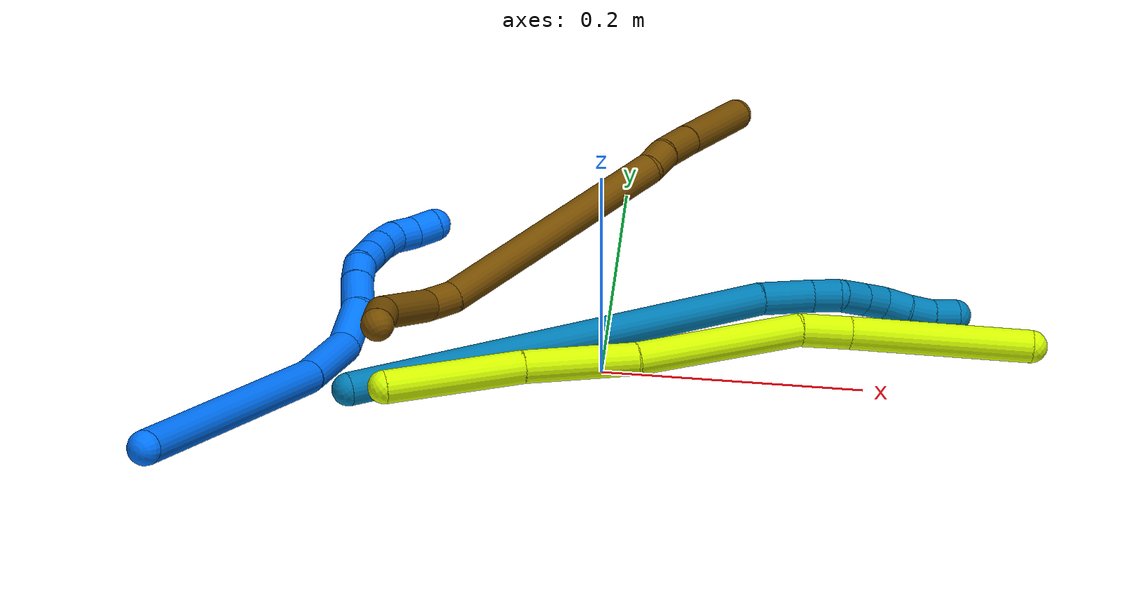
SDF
<sdf version="1.7">
 <world name="default">
  <model name="9">
   <static>0</static>
   <link name="9">
    <collision name="collision-cylinder-e_1_1_4">
     <pose>0.124955 0.059549 -0.092405 -2.56914 0.849274 -1.98756</pose>
     <geometry><cylinder><radius>0.0125</radius><length>0.332857</length></cylinder></geometry>
     <surface>
      <friction><ode><mu>1.16</mu><mu2>1.16</mu2><slip1>0</slip1><slip2>0</slip2></ode></friction>
      <contact><ode><kp>1e+06</kp><kd>1</kd><max_vel>0</max_vel><min_depth>0.001</min_depth></ode></contact>
     </surface>
    </collision>
    <visual name="visual-cylinder-e_1_1_4">
     <pose>0.124955 0.059549 -0.092405 -2.56914 0.849274 -1.98756</pose>
     <geometry><cylinder><radius>0.0125</radius><length>0.332857</length></cylinder></geometry>
     <material><ambient>0 0.490196 0.709804 1</ambient></material>
    </visual>
    <collision name="collision-cylinder-e_2_4_5">
     <pose>0.265092 0.123998 -0.198081 -2.78791 0.820723 -2.36209</pose>
     <geometry><cylinder><radius>0.0125</radius><length>0.041503</length></cylinder></geometry>
     <surface>
      <friction><ode><mu>1.16</mu><mu2>1.16</mu2><slip1>0</slip1><slip2>0</slip2></ode></friction>
      <contact><ode><kp>1e+06</kp><kd>1</kd><max_vel>0</max_vel><min_depth>0.001</min_depth></ode></contact>
     </surface>
    </collision>
    <visual name="visual-cylinder-e_2_4_5">
     <pose>0.265092 0.123998 -0.198081 -2.78791 0.820723 -2.36209</pose>
     <geometry><cylinder><radius>0.0125</radius><length>0.041503</length></cylinder></geometry>
     <material><ambient>0 0.490196 0.709804 1</ambient></material>
    </visual>
    <collision name="collision-cylinder-e_3_5_6">
     <pose>0.28964 0.12983 -0.21744 -2.98956 0.989001 -2.86094</pose>
     <geometry><cylinder><radius>0.0125</radius><length>0.02242</length></cylinder></geometry>
     <surface>
      <friction><ode><mu>1.16</mu><mu2>1.16</mu2><slip1>0</slip1><slip2>0</slip2></ode></friction>
      <contact><ode><kp>1e+06</kp><kd>1</kd><max_vel>0</max_vel><min_depth>0.001</min_depth></ode></contact>
     </surface>
    </collision>
    <visual name="visual-cylinder-e_3_5_6">
     <pose>0.28964 0.12983 -0.21744 -2.98956 0.989001 -2.86094</pose>
     <geometry><cylinder><radius>0.0125</radius><length>0.02242</length></cylinder></geometry>
     <material><ambient>0 0.490196 0.709804 1</ambient></material>
    </visual>
    <collision name="collision-cylinder-e_4_6_7">
     <pose>0.30396 0.133483 -0.23262 -2.85082 0.481206 -2.06552</pose>
     <geometry><cylinder><radius>0.0125</radius><length>0.02141</length></cylinder></geometry>
     <surface>
      <friction><ode><mu>1.16</mu><mu2>1.16</mu2><slip1>0</slip1><slip2>0</slip2></ode></friction>
      <contact><ode><kp>1e+06</kp><kd>1</kd><max_vel>0</max_vel><min_depth>0.001</min_depth></ode></contact>
     </surface>
    </collision>
    <visual name="visual-cylinder-e_4_6_7">
     <pose>0.30396 0.133483 -0.23262 -2.85082 0.481206 -2.06552</pose>
     <geometry><cylinder><radius>0.0125</radius><length>0.02141</length></cylinder></geometry>
     <material><ambient>0 0.490196 0.709804 1</ambient></material>
    </visual>
    <collision name="collision-cylinder-e_5_7_8">
     <pose>0.313711 0.138699 -0.250462 -2.86385 0.485031 -2.11304</pose>
     <geometry><cylinder><radius>0.0125</radius><length>0.020574</length></cylinder></geometry>
     <surface>
      <friction><ode><mu>1.16</mu><mu2>1.16</mu2><slip1>0</slip1><slip2>0</slip2></ode></friction>
      <contact><ode><kp>1e+06</kp><kd>1</kd><max_vel>0</max_vel><min_depth>0.001</min_depth></ode></contact>
     </surface>
    </collision>
    <visual name="visual-cylinder-e_5_7_8">
     <pose>0.313711 0.138699 -0.250462 -2.86385 0.485031 -2.11304</pose>
     <geometry><cylinder><radius>0.0125</radius><length>0.020574</length></cylinder></geometry>
     <material><ambient>0 0.490196 0.709804 1</ambient></material>
    </visual>
    <collision name="collision-cylinder-e_6_8_9">
     <pose>0.325301 0.140191 -0.26684 3.01081 0.723505 2.79888</pose>
     <geometry><cylinder><radius>0.0125</radius><length>0.020524</length></cylinder></geometry>
     <surface>
      <friction><ode><mu>1.16</mu><mu2>1.16</mu2><slip1>0</slip1><slip2>0</slip2></ode></friction>
      <contact><ode><kp>1e+06</kp><kd>1</kd><max_vel>0</max_vel><min_depth>0.001</min_depth></ode></contact>
     </surface>
    </collision>
    <visual name="visual-cylinder-e_6_8_9">
     <pose>0.325301 0.140191 -0.26684 3.01081 0.723505 2.79888</pose>
     <geometry><cylinder><radius>0.0125</radius><length>0.020524</length></cylinder></geometry>
     <material><ambient>0 0.490196 0.709804 1</ambient></material>
    </visual>
    <collision name="collision-cylinder-e_7_9_10">
     <pose>0.33859 0.139738 -0.282468 -3.07295 0.680621 -2.94826</pose>
     <geometry><cylinder><radius>0.0125</radius><length>0.020644</length></cylinder></geometry>
     <surface>
      <friction><ode><mu>1.16</mu><mu2>1.16</mu2><slip1>0</slip1><slip2>0</slip2></ode></friction>
      <contact><ode><kp>1e+06</kp><kd>1</kd><max_vel>0</max_vel><min_depth>0.001</min_depth></ode></contact>
     </surface>
    </collision>
    <visual name="visual-cylinder-e_7_9_10">
     <pose>0.33859 0.139738 -0.282468 -3.07295 0.680621 -2.94826</pose>
     <geometry><cylinder><radius>0.0125</radius><length>0.020644</length></cylinder></geometry>
     <material><ambient>0 0.490196 0.709804 1</ambient></material>
    </visual>
    <collision name="collision-cylinder-e_8_10_2">
     <pose>0.352263 0.142298 -0.297189 -2.8509 0.79712 -2.4725</pose>
     <geometry><cylinder><radius>0.0125</radius><length>0.020069</length></cylinder></geometry>
     <surface>
      <friction><ode><mu>1.16</mu><mu2>1.16</mu2><slip1>0</slip1><slip2>0</slip2></ode></friction>
      <contact><ode><kp>1e+06</kp><kd>1</kd><max_vel>0</max_vel><min_depth>0.001</min_depth></ode></contact>
     </surface>
    </collision>
    <visual name="visual-cylinder-e_8_10_2">
     <pose>0.352263 0.142298 -0.297189 -2.8509 0.79712 -2.4725</pose>
     <geometry><cylinder><radius>0.0125</radius><length>0.020069</length></cylinder></geometry>
     <material><ambient>0 0.490196 0.709804 1</ambient></material>
    </visual>
    <collision name="collision-sphere-2">
     <pose>0.359442 0.144308 -0.303907 0 -0 0</pose>
     <geometry><sphere><radius>0.0125</radius></sphere></geometry>
     <surface>
      <friction><ode><mu>1.16</mu><mu2>1.16</mu2><slip1>0</slip1><slip2>0</slip2></ode></friction>
      <contact><ode><kp>1e+06</kp><kd>1</kd><max_vel>0</max_vel><min_depth>0.001</min_depth></ode></contact>
     </surface>
    </collision>
    <visual name="visual-sphere-2">
     <pose>0.359442 0.144308 -0.303907 0 -0 0</pose>
     <geometry><sphere><radius>0.0125</radius></sphere></geometry>
     <material><ambient>0 0.490196 0.709804 1</ambient></material>
    </visual>
    <collision name="collision-sphere-10">
     <pose>0.345085 0.140289 -0.290471 0 -0 0</pose>
     <geometry><sphere><radius>0.0125</radius></sphere></geometry>
     <surface>
      <friction><ode><mu>1.16</mu><mu2>1.16</mu2><slip1>0</slip1><slip2>0</slip2></ode></friction>
      <contact><ode><kp>1e+06</kp><kd>1</kd><max_vel>0</max_vel><min_depth>0.001</min_depth></ode></contact>
     </surface>
    </collision>
    <visual name="visual-sphere-10">
     <pose>0.345085 0.140289 -0.290471 0 -0 0</pose>
     <geometry><sphere><radius>0.0125</radius></sphere></geometry>
     <material><ambient>0 0.490196 0.709804 1</ambient></material>
    </visual>
    <collision name="collision-sphere-9">
     <pose>0.332095 0.139188 -0.274465 0 -0 0</pose>
     <geometry><sphere><radius>0.0125</radius></sphere></geometry>
     <surface>
      <friction><ode><mu>1.16</mu><mu2>1.16</mu2><slip1>0</slip1><slip2>0</slip2></ode></friction>
      <contact><ode><kp>1e+06</kp><kd>1</kd><max_vel>0</max_vel><min_depth>0.001</min_depth></ode></contact>
     </surface>
    </collision>
    <visual name="visual-sphere-9">
     <pose>0.332095 0.139188 -0.274465 0 -0 0</pose>
     <geometry><sphere><radius>0.0125</radius></sphere></geometry>
     <material><ambient>0 0.490196 0.709804 1</ambient></material>
    </visual>
    <collision name="collision-sphere-4">
     <pose>0.24991 0.119098 -0.18481 0 -0 0</pose>
     <geometry><sphere><radius>0.0125</radius></sphere></geometry>
     <surface>
      <friction><ode><mu>1.16</mu><mu2>1.16</mu2><slip1>0</slip1><slip2>0</slip2></ode></friction>
      <contact><ode><kp>1e+06</kp><kd>1</kd><max_vel>0</max_vel><min_depth>0.001</min_depth></ode></contact>
     </surface>
    </collision>
    <visual name="visual-sphere-4">
     <pose>0.24991 0.119098 -0.18481 0 -0 0</pose>
     <geometry><sphere><radius>0.0125</radius></sphere></geometry>
     <material><ambient>0 0.490196 0.709804 1</ambient></material>
    </visual>
    <collision name="collision-sphere-1">
     <geometry><sphere><radius>0.0125</radius></sphere></geometry>
     <surface>
      <friction><ode><mu>1.16</mu><mu2>1.16</mu2><slip1>0</slip1><slip2>0</slip2></ode></friction>
      <contact><ode><kp>1e+06</kp><kd>1</kd><max_vel>0</max_vel><min_depth>0.001</min_depth></ode></contact>
     </surface>
    </collision>
    <visual name="visual-sphere-1">
     <geometry><sphere><radius>0.0125</radius></sphere></geometry>
     <material><ambient>0 0.490196 0.709804 1</ambient></material>
    </visual>
    <collision name="collision-sphere-8">
     <pose>0.318507 0.141194 -0.259214 0 -0 0</pose>
     <geometry><sphere><radius>0.0125</radius></sphere></geometry>
     <surface>
      <friction><ode><mu>1.16</mu><mu2>1.16</mu2><slip1>0</slip1><slip2>0</slip2></ode></friction>
      <contact><ode><kp>1e+06</kp><kd>1</kd><max_vel>0</max_vel><min_depth>0.001</min_depth></ode></contact>
     </surface>
    </collision>
    <visual name="visual-sphere-8">
     <pose>0.318507 0.141194 -0.259214 0 -0 0</pose>
     <geometry><sphere><radius>0.0125</radius></sphere></geometry>
     <material><ambient>0 0.490196 0.709804 1</ambient></material>
    </visual>
    <collision name="collision-sphere-5">
     <pose>0.280275 0.128897 -0.211351 0 -0 0</pose>
     <geometry><sphere><radius>0.0125</radius></sphere></geometry>
     <surface>
      <friction><ode><mu>1.16</mu><mu2>1.16</mu2><slip1>0</slip1><slip2>0</slip2></ode></friction>
      <contact><ode><kp>1e+06</kp><kd>1</kd><max_vel>0</max_vel><min_depth>0.001</min_depth></ode></contact>
     </surface>
    </collision>
    <visual name="visual-sphere-5">
     <pose>0.280275 0.128897 -0.211351 0 -0 0</pose>
     <geometry><sphere><radius>0.0125</radius></sphere></geometry>
     <material><ambient>0 0.490196 0.709804 1</ambient></material>
    </visual>
    <collision name="collision-sphere-6">
     <pose>0.299006 0.130763 -0.223529 0 -0 0</pose>
     <geometry><sphere><radius>0.0125</radius></sphere></geometry>
     <surface>
      <friction><ode><mu>1.16</mu><mu2>1.16</mu2><slip1>0</slip1><slip2>0</slip2></ode></friction>
      <contact><ode><kp>1e+06</kp><kd>1</kd><max_vel>0</max_vel><min_depth>0.001</min_depth></ode></contact>
     </surface>
    </collision>
    <visual name="visual-sphere-6">
     <pose>0.299006 0.130763 -0.223529 0 -0 0</pose>
     <geometry><sphere><radius>0.0125</radius></sphere></geometry>
     <material><ambient>0 0.490196 0.709804 1</ambient></material>
    </visual>
    <collision name="collision-sphere-7">
     <pose>0.308915 0.136204 -0.241711 0 -0 0</pose>
     <geometry><sphere><radius>0.0125</radius></sphere></geometry>
     <surface>
      <friction><ode><mu>1.16</mu><mu2>1.16</mu2><slip1>0</slip1><slip2>0</slip2></ode></friction>
      <contact><ode><kp>1e+06</kp><kd>1</kd><max_vel>0</max_vel><min_depth>0.001</min_depth></ode></contact>
     </surface>
    </collision>
    <visual name="visual-sphere-7">
     <pose>0.308915 0.136204 -0.241711 0 -0 0</pose>
     <geometry><sphere><radius>0.0125</radius></sphere></geometry>
     <material><ambient>0 0.490196 0.709804 1</ambient></material>
    </visual>
    <inertial>
     <pose>0.185571 0.084415 -0.142518 0 -0 0</pose>
     <mass>0.5</mass>
     <inertia>
      <ixx>-0.002677</ixx>
      <ixy>0</ixy>
      <ixz>0</ixz>
      <iyy>0.000353</iyy>
      <iyz>0</iyz>
      <izz>-0.00346</izz>
     </inertia>
    </inertial>
   </link>
   <pose>-0.173712 -0.132947 0.095427 0.155484 -0.48087 0.036841</pose>
  </model>
  <model name="12">
   <static>0</static>
   <link name="12">
    <collision name="collision-cylinder-e_1_1_4">
     <pose>0.014368 0.006511 -0.012511 -2.66175 0.794689 -2.08607</pose>
     <geometry><cylinder><radius>0.0125</radius><length>0.040267</length></cylinder></geometry>
     <surface>
      <friction><ode><mu>1.16</mu><mu2>1.16</mu2><slip1>0</slip1><slip2>0</slip2></ode></friction>
      <contact><ode><kp>1e+06</kp><kd>1</kd><max_vel>0</max_vel><min_depth>0.001</min_depth></ode></contact>
     </surface>
    </collision>
    <visual name="visual-cylinder-e_1_1_4">
     <pose>0.014368 0.006511 -0.012511 -2.66175 0.794689 -2.08607</pose>
     <geometry><cylinder><radius>0.0125</radius><length>0.040267</length></cylinder></geometry>
     <material><ambient>0.466667 0.301961 0 1</ambient></material>
    </visual>
    <collision name="collision-cylinder-e_2_4_5">
     <pose>0.058419 0.035991 -0.039275 -2.12615 0.832097 -1.34233</pose>
     <geometry><cylinder><radius>0.0125</radius><length>0.080294</length></cylinder></geometry>
     <surface>
      <friction><ode><mu>1.16</mu><mu2>1.16</mu2><slip1>0</slip1><slip2>0</slip2></ode></friction>
      <contact><ode><kp>1e+06</kp><kd>1</kd><max_vel>0</max_vel><min_depth>0.001</min_depth></ode></contact>
     </surface>
    </collision>
    <visual name="visual-cylinder-e_2_4_5">
     <pose>0.058419 0.035991 -0.039275 -2.12615 0.832097 -1.34233</pose>
     <geometry><cylinder><radius>0.0125</radius><length>0.080294</length></cylinder></geometry>
     <material><ambient>0.466667 0.301961 0 1</ambient></material>
    </visual>
    <collision name="collision-cylinder-e_3_5_6">
     <pose>0.093017 0.070997 -0.056384 -1.80385 0.378218 -0.475145</pose>
     <geometry><cylinder><radius>0.0125</radius><length>0.026625</length></cylinder></geometry>
     <surface>
      <friction><ode><mu>1.16</mu><mu2>1.16</mu2><slip1>0</slip1><slip2>0</slip2></ode></friction>
      <contact><ode><kp>1e+06</kp><kd>1</kd><max_vel>0</max_vel><min_depth>0.001</min_depth></ode></contact>
     </surface>
    </collision>
    <visual name="visual-cylinder-e_3_5_6">
     <pose>0.093017 0.070997 -0.056384 -1.80385 0.378218 -0.475145</pose>
     <geometry><cylinder><radius>0.0125</radius><length>0.026625</length></cylinder></geometry>
     <material><ambient>0.466667 0.301961 0 1</ambient></material>
    </visual>
    <collision name="collision-cylinder-e_4_6_7">
     <pose>0.11173 0.179695 -0.095785 -1.93225 0.132727 -0.191767</pose>
     <geometry><cylinder><radius>0.0125</radius><length>0.20851</length></cylinder></geometry>
     <surface>
      <friction><ode><mu>1.16</mu><mu2>1.16</mu2><slip1>0</slip1><slip2>0</slip2></ode></friction>
      <contact><ode><kp>1e+06</kp><kd>1</kd><max_vel>0</max_vel><min_depth>0.001</min_depth></ode></contact>
     </surface>
    </collision>
    <visual name="visual-cylinder-e_4_6_7">
     <pose>0.11173 0.179695 -0.095785 -1.93225 0.132727 -0.191767</pose>
     <geometry><cylinder><radius>0.0125</radius><length>0.20851</length></cylinder></geometry>
     <material><ambient>0.466667 0.301961 0 1</ambient></material>
    </visual>
    <collision name="collision-cylinder-e_5_7_8">
     <pose>0.129083 0.2854 -0.138886 -2.19816 0.308211 -0.591175</pose>
     <geometry><cylinder><radius>0.0125</radius><length>0.023447</length></cylinder></geometry>
     <surface>
      <friction><ode><mu>1.16</mu><mu2>1.16</mu2><slip1>0</slip1><slip2>0</slip2></ode></friction>
      <contact><ode><kp>1e+06</kp><kd>1</kd><max_vel>0</max_vel><min_depth>0.001</min_depth></ode></contact>
     </surface>
    </collision>
    <visual name="visual-cylinder-e_5_7_8">
     <pose>0.129083 0.2854 -0.138886 -2.19816 0.308211 -0.591175</pose>
     <geometry><cylinder><radius>0.0125</radius><length>0.023447</length></cylinder></geometry>
     <material><ambient>0.466667 0.301961 0 1</ambient></material>
    </visual>
    <collision name="collision-cylinder-e_6_8_9">
     <pose>0.141403 0.30762 -0.153232 -2.1046 0.520009 -0.872569</pose>
     <geometry><cylinder><radius>0.0125</radius><length>0.035276</length></cylinder></geometry>
     <surface>
      <friction><ode><mu>1.16</mu><mu2>1.16</mu2><slip1>0</slip1><slip2>0</slip2></ode></friction>
      <contact><ode><kp>1e+06</kp><kd>1</kd><max_vel>0</max_vel><min_depth>0.001</min_depth></ode></contact>
     </surface>
    </collision>
    <visual name="visual-cylinder-e_6_8_9">
     <pose>0.141403 0.30762 -0.153232 -2.1046 0.520009 -0.872569</pose>
     <geometry><cylinder><radius>0.0125</radius><length>0.035276</length></cylinder></geometry>
     <material><ambient>0.466667 0.301961 0 1</ambient></material>
    </visual>
    <collision name="collision-cylinder-e_7_9_2">
     <pose>0.173232 0.3517 -0.17957 -2.11144 0.569263 -0.954121</pose>
     <geometry><cylinder><radius>0.0125</radius><length>0.085582</length></cylinder></geometry>
     <surface>
      <friction><ode><mu>1.16</mu><mu2>1.16</mu2><slip1>0</slip1><slip2>0</slip2></ode></friction>
      <contact><ode><kp>1e+06</kp><kd>1</kd><max_vel>0</max_vel><min_depth>0.001</min_depth></ode></contact>
     </surface>
    </collision>
    <visual name="visual-cylinder-e_7_9_2">
     <pose>0.173232 0.3517 -0.17957 -2.11144 0.569263 -0.954121</pose>
     <geometry><cylinder><radius>0.0125</radius><length>0.085582</length></cylinder></geometry>
     <material><ambient>0.466667 0.301961 0 1</ambient></material>
    </visual>
    <collision name="collision-sphere-2">
     <pose>0.196297 0.382602 -0.198121 0 -0 0</pose>
     <geometry><sphere><radius>0.0125</radius></sphere></geometry>
     <surface>
      <friction><ode><mu>1.16</mu><mu2>1.16</mu2><slip1>0</slip1><slip2>0</slip2></ode></friction>
      <contact><ode><kp>1e+06</kp><kd>1</kd><max_vel>0</max_vel><min_depth>0.001</min_depth></ode></contact>
     </surface>
    </collision>
    <visual name="visual-sphere-2">
     <pose>0.196297 0.382602 -0.198121 0 -0 0</pose>
     <geometry><sphere><radius>0.0125</radius></sphere></geometry>
     <material><ambient>0.466667 0.301961 0 1</ambient></material>
    </visual>
    <collision name="collision-sphere-9">
     <pose>0.150167 0.320797 -0.16102 0 -0 0</pose>
     <geometry><sphere><radius>0.0125</radius></sphere></geometry>
     <surface>
      <friction><ode><mu>1.16</mu><mu2>1.16</mu2><slip1>0</slip1><slip2>0</slip2></ode></friction>
      <contact><ode><kp>1e+06</kp><kd>1</kd><max_vel>0</max_vel><min_depth>0.001</min_depth></ode></contact>
     </surface>
    </collision>
    <visual name="visual-sphere-9">
     <pose>0.150167 0.320797 -0.16102 0 -0 0</pose>
     <geometry><sphere><radius>0.0125</radius></sphere></geometry>
     <material><ambient>0.466667 0.301961 0 1</ambient></material>
    </visual>
    <collision name="collision-sphere-4">
     <pose>0.028737 0.013022 -0.025022 0 -0 0</pose>
     <geometry><sphere><radius>0.0125</radius></sphere></geometry>
     <surface>
      <friction><ode><mu>1.16</mu><mu2>1.16</mu2><slip1>0</slip1><slip2>0</slip2></ode></friction>
      <contact><ode><kp>1e+06</kp><kd>1</kd><max_vel>0</max_vel><min_depth>0.001</min_depth></ode></contact>
     </surface>
    </collision>
    <visual name="visual-sphere-4">
     <pose>0.028737 0.013022 -0.025022 0 -0 0</pose>
     <geometry><sphere><radius>0.0125</radius></sphere></geometry>
     <material><ambient>0.466667 0.301961 0 1</ambient></material>
    </visual>
    <collision name="collision-sphere-1">
     <geometry><sphere><radius>0.0125</radius></sphere></geometry>
     <surface>
      <friction><ode><mu>1.16</mu><mu2>1.16</mu2><slip1>0</slip1><slip2>0</slip2></ode></friction>
      <contact><ode><kp>1e+06</kp><kd>1</kd><max_vel>0</max_vel><min_depth>0.001</min_depth></ode></contact>
     </surface>
    </collision>
    <visual name="visual-sphere-1">
     <geometry><sphere><radius>0.0125</radius></sphere></geometry>
     <material><ambient>0.466667 0.301961 0 1</ambient></material>
    </visual>
    <collision name="collision-sphere-8">
     <pose>0.132639 0.294444 -0.145444 0 -0 0</pose>
     <geometry><sphere><radius>0.0125</radius></sphere></geometry>
     <surface>
      <friction><ode><mu>1.16</mu><mu2>1.16</mu2><slip1>0</slip1><slip2>0</slip2></ode></friction>
      <contact><ode><kp>1e+06</kp><kd>1</kd><max_vel>0</max_vel><min_depth>0.001</min_depth></ode></contact>
     </surface>
    </collision>
    <visual name="visual-sphere-8">
     <pose>0.132639 0.294444 -0.145444 0 -0 0</pose>
     <geometry><sphere><radius>0.0125</radius></sphere></geometry>
     <material><ambient>0.466667 0.301961 0 1</ambient></material>
    </visual>
    <collision name="collision-sphere-5">
     <pose>0.088102 0.05896 -0.053527 0 -0 0</pose>
     <geometry><sphere><radius>0.0125</radius></sphere></geometry>
     <surface>
      <friction><ode><mu>1.16</mu><mu2>1.16</mu2><slip1>0</slip1><slip2>0</slip2></ode></friction>
      <contact><ode><kp>1e+06</kp><kd>1</kd><max_vel>0</max_vel><min_depth>0.001</min_depth></ode></contact>
     </surface>
    </collision>
    <visual name="visual-sphere-5">
     <pose>0.088102 0.05896 -0.053527 0 -0 0</pose>
     <geometry><sphere><radius>0.0125</radius></sphere></geometry>
     <material><ambient>0.466667 0.301961 0 1</ambient></material>
    </visual>
    <collision name="collision-sphere-6">
     <pose>0.097933 0.083034 -0.059242 0 -0 0</pose>
     <geometry><sphere><radius>0.0125</radius></sphere></geometry>
     <surface>
      <friction><ode><mu>1.16</mu><mu2>1.16</mu2><slip1>0</slip1><slip2>0</slip2></ode></friction>
      <contact><ode><kp>1e+06</kp><kd>1</kd><max_vel>0</max_vel><min_depth>0.001</min_depth></ode></contact>
     </surface>
    </collision>
    <visual name="visual-sphere-6">
     <pose>0.097933 0.083034 -0.059242 0 -0 0</pose>
     <geometry><sphere><radius>0.0125</radius></sphere></geometry>
     <material><ambient>0.466667 0.301961 0 1</ambient></material>
    </visual>
    <collision name="collision-sphere-7">
     <pose>0.125527 0.276356 -0.132329 0 -0 0</pose>
     <geometry><sphere><radius>0.0125</radius></sphere></geometry>
     <surface>
      <friction><ode><mu>1.16</mu><mu2>1.16</mu2><slip1>0</slip1><slip2>0</slip2></ode></friction>
      <contact><ode><kp>1e+06</kp><kd>1</kd><max_vel>0</max_vel><min_depth>0.001</min_depth></ode></contact>
     </surface>
    </collision>
    <visual name="visual-sphere-7">
     <pose>0.125527 0.276356 -0.132329 0 -0 0</pose>
     <geometry><sphere><radius>0.0125</radius></sphere></geometry>
     <material><ambient>0.466667 0.301961 0 1</ambient></material>
    </visual>
    <inertial>
     <pose>0.107766 0.180306 -0.098321 0 -0 0</pose>
     <mass>0.5</mass>
     <inertia>
      <ixx>0.000574</ixx>
      <ixy>0</ixy>
      <ixz>0</ixz>
      <iyy>-0.000408</iyy>
      <iyz>0</iyz>
      <izz>-0.000974</izz>
     </inertia>
    </inertial>
   </link>
   <pose>-0.154733 -0.104962 0.1364 2.92858 1.31658 1.84607</pose>
  </model>
  <model name="14">
   <static>0</static>
   <link name="14">
    <collision name="collision-cylinder-e_1_1_4">
     <pose>-0.001948 0.001385 -0.118748 -3.12993 -0.016403 1.9051</pose>
     <geometry><cylinder><radius>0.0125</radius><length>0.237544</length></cylinder></geometry>
     <surface>
      <friction><ode><mu>1.16</mu><mu2>1.16</mu2><slip1>0</slip1><slip2>0</slip2></ode></friction>
      <contact><ode><kp>1e+06</kp><kd>1</kd><max_vel>0</max_vel><min_depth>0.001</min_depth></ode></contact>
     </surface>
    </collision>
    <visual name="visual-cylinder-e_1_1_4">
     <pose>-0.001948 0.001385 -0.118748 -3.12993 -0.016403 1.9051</pose>
     <geometry><cylinder><radius>0.0125</radius><length>0.237544</length></cylinder></geometry>
     <material><ambient>0 0.462745 1 1</ambient></material>
    </visual>
    <collision name="collision-cylinder-e_2_4_5">
     <pose>-0.00545 0.008038 -0.271407 -2.98751 -0.04525 0.57032</pose>
     <geometry><cylinder><radius>0.0125</radius><length>0.068707</length></cylinder></geometry>
     <surface>
      <friction><ode><mu>1.16</mu><mu2>1.16</mu2><slip1>0</slip1><slip2>0</slip2></ode></friction>
      <contact><ode><kp>1e+06</kp><kd>1</kd><max_vel>0</max_vel><min_depth>0.001</min_depth></ode></contact>
     </surface>
    </collision>
    <visual name="visual-cylinder-e_2_4_5">
     <pose>-0.00545 0.008038 -0.271407 -2.98751 -0.04525 0.57032</pose>
     <geometry><cylinder><radius>0.0125</radius><length>0.068707</length></cylinder></geometry>
     <material><ambient>0 0.462745 1 1</ambient></material>
    </visual>
    <collision name="collision-cylinder-e_3_5_6">
     <pose>-0.005347 0.024435 -0.321772 -2.54684 0.083208 -0.270013</pose>
     <geometry><cylinder><radius>0.0125</radius><length>0.039867</length></cylinder></geometry>
     <surface>
      <friction><ode><mu>1.16</mu><mu2>1.16</mu2><slip1>0</slip1><slip2>0</slip2></ode></friction>
      <contact><ode><kp>1e+06</kp><kd>1</kd><max_vel>0</max_vel><min_depth>0.001</min_depth></ode></contact>
     </surface>
    </collision>
    <visual name="visual-cylinder-e_3_5_6">
     <pose>-0.005347 0.024435 -0.321772 -2.54684 0.083208 -0.270013</pose>
     <geometry><cylinder><radius>0.0125</radius><length>0.039867</length></cylinder></geometry>
     <material><ambient>0 0.462745 1 1</ambient></material>
    </visual>
    <collision name="collision-cylinder-e_4_6_7">
     <pose>-0.006585 0.044983 -0.349605 -2.45024 -0.193461 0.52637</pose>
     <geometry><cylinder><radius>0.0125</radius><length>0.030104</length></cylinder></geometry>
     <surface>
      <friction><ode><mu>1.16</mu><mu2>1.16</mu2><slip1>0</slip1><slip2>0</slip2></ode></friction>
      <contact><ode><kp>1e+06</kp><kd>1</kd><max_vel>0</max_vel><min_depth>0.001</min_depth></ode></contact>
     </surface>
    </collision>
    <visual name="visual-cylinder-e_4_6_7">
     <pose>-0.006585 0.044983 -0.349605 -2.45024 -0.193461 0.52637</pose>
     <geometry><cylinder><radius>0.0125</radius><length>0.030104</length></cylinder></geometry>
     <material><ambient>0 0.462745 1 1</ambient></material>
    </visual>
    <collision name="collision-cylinder-e_5_7_8">
     <pose>-0.010786 0.060078 -0.369618 -2.55989 -0.12584 0.414894</pose>
     <geometry><cylinder><radius>0.0125</radius><length>0.02083</length></cylinder></geometry>
     <surface>
      <friction><ode><mu>1.16</mu><mu2>1.16</mu2><slip1>0</slip1><slip2>0</slip2></ode></friction>
      <contact><ode><kp>1e+06</kp><kd>1</kd><max_vel>0</max_vel><min_depth>0.001</min_depth></ode></contact>
     </surface>
    </collision>
    <visual name="visual-cylinder-e_5_7_8">
     <pose>-0.010786 0.060078 -0.369618 -2.55989 -0.12584 0.414894</pose>
     <geometry><cylinder><radius>0.0125</radius><length>0.02083</length></cylinder></geometry>
     <material><ambient>0 0.462745 1 1</ambient></material>
    </visual>
    <collision name="collision-cylinder-e_6_8_9">
     <pose>-0.012699 0.067863 -0.388512 -2.93896 -0.057763 0.553722</pose>
     <geometry><cylinder><radius>0.0125</radius><length>0.020984</length></cylinder></geometry>
     <surface>
      <friction><ode><mu>1.16</mu><mu2>1.16</mu2><slip1>0</slip1><slip2>0</slip2></ode></friction>
      <contact><ode><kp>1e+06</kp><kd>1</kd><max_vel>0</max_vel><min_depth>0.001</min_depth></ode></contact>
     </surface>
    </collision>
    <visual name="visual-cylinder-e_6_8_9">
     <pose>-0.012699 0.067863 -0.388512 -2.93896 -0.057763 0.553722</pose>
     <geometry><cylinder><radius>0.0125</radius><length>0.020984</length></cylinder></geometry>
     <material><ambient>0 0.462745 1 1</ambient></material>
    </visual>
    <collision name="collision-cylinder-e_7_9_10">
     <pose>-0.013705 0.072218 -0.40922 -2.92979 -0.037527 0.349478</pose>
     <geometry><cylinder><radius>0.0125</radius><length>0.021389</length></cylinder></geometry>
     <surface>
      <friction><ode><mu>1.16</mu><mu2>1.16</mu2><slip1>0</slip1><slip2>0</slip2></ode></friction>
      <contact><ode><kp>1e+06</kp><kd>1</kd><max_vel>0</max_vel><min_depth>0.001</min_depth></ode></contact>
     </surface>
    </collision>
    <visual name="visual-cylinder-e_7_9_10">
     <pose>-0.013705 0.072218 -0.40922 -2.92979 -0.037527 0.349478</pose>
     <geometry><cylinder><radius>0.0125</radius><length>0.021389</length></cylinder></geometry>
     <material><ambient>0 0.462745 1 1</ambient></material>
    </visual>
    <collision name="collision-cylinder-e_8_10_11">
     <pose>-0.013018 0.075744 -0.429599 -3.01352 0.108336 -1.40386</pose>
     <geometry><cylinder><radius>0.0125</radius><length>0.020145</length></cylinder></geometry>
     <surface>
      <friction><ode><mu>1.16</mu><mu2>1.16</mu2><slip1>0</slip1><slip2>0</slip2></ode></friction>
      <contact><ode><kp>1e+06</kp><kd>1</kd><max_vel>0</max_vel><min_depth>0.001</min_depth></ode></contact>
     </surface>
    </collision>
    <visual name="visual-cylinder-e_8_10_11">
     <pose>-0.013018 0.075744 -0.429599 -3.01352 0.108336 -1.40386</pose>
     <geometry><cylinder><radius>0.0125</radius><length>0.020145</length></cylinder></geometry>
     <material><ambient>0 0.462745 1 1</ambient></material>
    </visual>
    <collision name="collision-cylinder-e_9_11_12">
     <pose>-0.008628 0.076028 -0.44911 3.03817 0.330166 2.53915</pose>
     <geometry><cylinder><radius>0.0125</radius><length>0.02036</length></cylinder></geometry>
     <surface>
      <friction><ode><mu>1.16</mu><mu2>1.16</mu2><slip1>0</slip1><slip2>0</slip2></ode></friction>
      <contact><ode><kp>1e+06</kp><kd>1</kd><max_vel>0</max_vel><min_depth>0.001</min_depth></ode></contact>
     </surface>
    </collision>
    <visual name="visual-cylinder-e_9_11_12">
     <pose>-0.008628 0.076028 -0.44911 3.03817 0.330166 2.53915</pose>
     <geometry><cylinder><radius>0.0125</radius><length>0.02036</length></cylinder></geometry>
     <material><ambient>0 0.462745 1 1</ambient></material>
    </visual>
    <collision name="collision-cylinder-e_10_12_2">
     <pose>0.000397 0.07483 -0.466928 3.11686 0.607055 3.06266</pose>
     <geometry><cylinder><radius>0.0125</radius><length>0.020071</length></cylinder></geometry>
     <surface>
      <friction><ode><mu>1.16</mu><mu2>1.16</mu2><slip1>0</slip1><slip2>0</slip2></ode></friction>
      <contact><ode><kp>1e+06</kp><kd>1</kd><max_vel>0</max_vel><min_depth>0.001</min_depth></ode></contact>
     </surface>
    </collision>
    <visual name="visual-cylinder-e_10_12_2">
     <pose>0.000397 0.07483 -0.466928 3.11686 0.607055 3.06266</pose>
     <geometry><cylinder><radius>0.0125</radius><length>0.020071</length></cylinder></geometry>
     <material><ambient>0 0.462745 1 1</ambient></material>
    </visual>
    <collision name="collision-sphere-2">
     <pose>0.006121 0.074626 -0.475168 0 -0 0</pose>
     <geometry><sphere><radius>0.0125</radius></sphere></geometry>
     <surface>
      <friction><ode><mu>1.16</mu><mu2>1.16</mu2><slip1>0</slip1><slip2>0</slip2></ode></friction>
      <contact><ode><kp>1e+06</kp><kd>1</kd><max_vel>0</max_vel><min_depth>0.001</min_depth></ode></contact>
     </surface>
    </collision>
    <visual name="visual-sphere-2">
     <pose>0.006121 0.074626 -0.475168 0 -0 0</pose>
     <geometry><sphere><radius>0.0125</radius></sphere></geometry>
     <material><ambient>0 0.462745 1 1</ambient></material>
    </visual>
    <collision name="collision-sphere-12">
     <pose>-0.005328 0.075034 -0.458688 0 -0 0</pose>
     <geometry><sphere><radius>0.0125</radius></sphere></geometry>
     <surface>
      <friction><ode><mu>1.16</mu><mu2>1.16</mu2><slip1>0</slip1><slip2>0</slip2></ode></friction>
      <contact><ode><kp>1e+06</kp><kd>1</kd><max_vel>0</max_vel><min_depth>0.001</min_depth></ode></contact>
     </surface>
    </collision>
    <visual name="visual-sphere-12">
     <pose>-0.005328 0.075034 -0.458688 0 -0 0</pose>
     <geometry><sphere><radius>0.0125</radius></sphere></geometry>
     <material><ambient>0 0.462745 1 1</ambient></material>
    </visual>
    <collision name="collision-sphere-11">
     <pose>-0.011929 0.077022 -0.439531 0 -0 0</pose>
     <geometry><sphere><radius>0.0125</radius></sphere></geometry>
     <surface>
      <friction><ode><mu>1.16</mu><mu2>1.16</mu2><slip1>0</slip1><slip2>0</slip2></ode></friction>
      <contact><ode><kp>1e+06</kp><kd>1</kd><max_vel>0</max_vel><min_depth>0.001</min_depth></ode></contact>
     </surface>
    </collision>
    <visual name="visual-sphere-11">
     <pose>-0.011929 0.077022 -0.439531 0 -0 0</pose>
     <geometry><sphere><radius>0.0125</radius></sphere></geometry>
     <material><ambient>0 0.462745 1 1</ambient></material>
    </visual>
    <collision name="collision-sphere-10">
     <pose>-0.014107 0.074465 -0.419668 0 -0 0</pose>
     <geometry><sphere><radius>0.0125</radius></sphere></geometry>
     <surface>
      <friction><ode><mu>1.16</mu><mu2>1.16</mu2><slip1>0</slip1><slip2>0</slip2></ode></friction>
      <contact><ode><kp>1e+06</kp><kd>1</kd><max_vel>0</max_vel><min_depth>0.001</min_depth></ode></contact>
     </surface>
    </collision>
    <visual name="visual-sphere-10">
     <pose>-0.014107 0.074465 -0.419668 0 -0 0</pose>
     <geometry><sphere><radius>0.0125</radius></sphere></geometry>
     <material><ambient>0 0.462745 1 1</ambient></material>
    </visual>
    <collision name="collision-sphere-9">
     <pose>-0.013304 0.069971 -0.398772 0 -0 0</pose>
     <geometry><sphere><radius>0.0125</radius></sphere></geometry>
     <surface>
      <friction><ode><mu>1.16</mu><mu2>1.16</mu2><slip1>0</slip1><slip2>0</slip2></ode></friction>
      <contact><ode><kp>1e+06</kp><kd>1</kd><max_vel>0</max_vel><min_depth>0.001</min_depth></ode></contact>
     </surface>
    </collision>
    <visual name="visual-sphere-9">
     <pose>-0.013304 0.069971 -0.398772 0 -0 0</pose>
     <geometry><sphere><radius>0.0125</radius></sphere></geometry>
     <material><ambient>0 0.462745 1 1</ambient></material>
    </visual>
    <collision name="collision-sphere-4">
     <pose>-0.003896 0.002771 -0.237496 0 -0 0</pose>
     <geometry><sphere><radius>0.0125</radius></sphere></geometry>
     <surface>
      <friction><ode><mu>1.16</mu><mu2>1.16</mu2><slip1>0</slip1><slip2>0</slip2></ode></friction>
      <contact><ode><kp>1e+06</kp><kd>1</kd><max_vel>0</max_vel><min_depth>0.001</min_depth></ode></contact>
     </surface>
    </collision>
    <visual name="visual-sphere-4">
     <pose>-0.003896 0.002771 -0.237496 0 -0 0</pose>
     <geometry><sphere><radius>0.0125</radius></sphere></geometry>
     <material><ambient>0 0.462745 1 1</ambient></material>
    </visual>
    <collision name="collision-sphere-1">
     <geometry><sphere><radius>0.0125</radius></sphere></geometry>
     <surface>
      <friction><ode><mu>1.16</mu><mu2>1.16</mu2><slip1>0</slip1><slip2>0</slip2></ode></friction>
      <contact><ode><kp>1e+06</kp><kd>1</kd><max_vel>0</max_vel><min_depth>0.001</min_depth></ode></contact>
     </surface>
    </collision>
    <visual name="visual-sphere-1">
     <geometry><sphere><radius>0.0125</radius></sphere></geometry>
     <material><ambient>0 0.462745 1 1</ambient></material>
    </visual>
    <collision name="collision-sphere-8">
     <pose>-0.012093 0.065755 -0.378252 0 -0 0</pose>
     <geometry><sphere><radius>0.0125</radius></sphere></geometry>
     <surface>
      <friction><ode><mu>1.16</mu><mu2>1.16</mu2><slip1>0</slip1><slip2>0</slip2></ode></friction>
      <contact><ode><kp>1e+06</kp><kd>1</kd><max_vel>0</max_vel><min_depth>0.001</min_depth></ode></contact>
     </surface>
    </collision>
    <visual name="visual-sphere-8">
     <pose>-0.012093 0.065755 -0.378252 0 -0 0</pose>
     <geometry><sphere><radius>0.0125</radius></sphere></geometry>
     <material><ambient>0 0.462745 1 1</ambient></material>
    </visual>
    <collision name="collision-sphere-5">
     <pose>-0.007004 0.013305 -0.305319 0 -0 0</pose>
     <geometry><sphere><radius>0.0125</radius></sphere></geometry>
     <surface>
      <friction><ode><mu>1.16</mu><mu2>1.16</mu2><slip1>0</slip1><slip2>0</slip2></ode></friction>
      <contact><ode><kp>1e+06</kp><kd>1</kd><max_vel>0</max_vel><min_depth>0.001</min_depth></ode></contact>
     </surface>
    </collision>
    <visual name="visual-sphere-5">
     <pose>-0.007004 0.013305 -0.305319 0 -0 0</pose>
     <geometry><sphere><radius>0.0125</radius></sphere></geometry>
     <material><ambient>0 0.462745 1 1</ambient></material>
    </visual>
    <collision name="collision-sphere-6">
     <pose>-0.003691 0.035565 -0.338226 0 -0 0</pose>
     <geometry><sphere><radius>0.0125</radius></sphere></geometry>
     <surface>
      <friction><ode><mu>1.16</mu><mu2>1.16</mu2><slip1>0</slip1><slip2>0</slip2></ode></friction>
      <contact><ode><kp>1e+06</kp><kd>1</kd><max_vel>0</max_vel><min_depth>0.001</min_depth></ode></contact>
     </surface>
    </collision>
    <visual name="visual-sphere-6">
     <pose>-0.003691 0.035565 -0.338226 0 -0 0</pose>
     <geometry><sphere><radius>0.0125</radius></sphere></geometry>
     <material><ambient>0 0.462745 1 1</ambient></material>
    </visual>
    <collision name="collision-sphere-7">
     <pose>-0.009478 0.054401 -0.360985 0 -0 0</pose>
     <geometry><sphere><radius>0.0125</radius></sphere></geometry>
     <surface>
      <friction><ode><mu>1.16</mu><mu2>1.16</mu2><slip1>0</slip1><slip2>0</slip2></ode></friction>
      <contact><ode><kp>1e+06</kp><kd>1</kd><max_vel>0</max_vel><min_depth>0.001</min_depth></ode></contact>
     </surface>
    </collision>
    <visual name="visual-sphere-7">
     <pose>-0.009478 0.054401 -0.360985 0 -0 0</pose>
     <geometry><sphere><radius>0.0125</radius></sphere></geometry>
     <material><ambient>0 0.462745 1 1</ambient></material>
    </visual>
    <inertial>
     <pose>-0.004926 0.024011 -0.243964 0 -0 0</pose>
     <mass>0.5</mass>
     <inertia>
      <ixx>0.000749</ixx>
      <ixy>0</ixy>
      <ixz>0</ixz>
      <iyy>0.001423</iyy>
      <iyz>0</iyz>
      <izz>-4.4e-05</izz>
     </inertia>
    </inertial>
   </link>
   <pose>-0.277117 -0.350698 0.244591 0.960138 -0.577953 -0.045208</pose>
  </model>
  <model name="15">
   <static>0</static>
   <link name="15">
    <collision name="collision-cylinder-e_1_1_4">
     <pose>0.040559 0.012392 -0.030769 -2.75872 0.88527 -2.36532</pose>
     <geometry><cylinder><radius>0.0125</radius><length>0.104791</length></cylinder></geometry>
     <surface>
      <friction><ode><mu>1.16</mu><mu2>1.16</mu2><slip1>0</slip1><slip2>0</slip2></ode></friction>
      <contact><ode><kp>1e+06</kp><kd>1</kd><max_vel>0</max_vel><min_depth>0.001</min_depth></ode></contact>
     </surface>
    </collision>
    <visual name="visual-cylinder-e_1_1_4">
     <pose>0.040559 0.012392 -0.030769 -2.75872 0.88527 -2.36532</pose>
     <geometry><cylinder><radius>0.0125</radius><length>0.104791</length></cylinder></geometry>
     <material><ambient>0.835294 1 0 1</ambient></material>
    </visual>
    <collision name="collision-cylinder-e_2_4_5">
     <pose>0.113343 0.032577 -0.088842 -2.86358 0.848507 -2.54084</pose>
     <geometry><cylinder><radius>0.0125</radius><length>0.085901</length></cylinder></geometry>
     <surface>
      <friction><ode><mu>1.16</mu><mu2>1.16</mu2><slip1>0</slip1><slip2>0</slip2></ode></friction>
      <contact><ode><kp>1e+06</kp><kd>1</kd><max_vel>0</max_vel><min_depth>0.001</min_depth></ode></contact>
     </surface>
    </collision>
    <visual name="visual-cylinder-e_2_4_5">
     <pose>0.113343 0.032577 -0.088842 -2.86358 0.848507 -2.54084</pose>
     <geometry><cylinder><radius>0.0125</radius><length>0.085901</length></cylinder></geometry>
     <material><ambient>0.835294 1 0 1</ambient></material>
    </visual>
    <collision name="collision-cylinder-e_3_5_6">
     <pose>0.19419 0.060591 -0.153636 -2.64693 0.851375 -2.12535</pose>
     <geometry><cylinder><radius>0.0125</radius><length>0.129281</length></cylinder></geometry>
     <surface>
      <friction><ode><mu>1.16</mu><mu2>1.16</mu2><slip1>0</slip1><slip2>0</slip2></ode></friction>
      <contact><ode><kp>1e+06</kp><kd>1</kd><max_vel>0</max_vel><min_depth>0.001</min_depth></ode></contact>
     </surface>
    </collision>
    <visual name="visual-cylinder-e_3_5_6">
     <pose>0.19419 0.060591 -0.153636 -2.64693 0.851375 -2.12535</pose>
     <geometry><cylinder><radius>0.0125</radius><length>0.129281</length></cylinder></geometry>
     <material><ambient>0.835294 1 0 1</ambient></material>
    </visual>
    <collision name="collision-cylinder-e_4_6_7">
     <pose>0.255511 0.085257 -0.205997 -2.85121 0.685684 -2.36398</pose>
     <geometry><cylinder><radius>0.0125</radius><length>0.04011</length></cylinder></geometry>
     <surface>
      <friction><ode><mu>1.16</mu><mu2>1.16</mu2><slip1>0</slip1><slip2>0</slip2></ode></friction>
      <contact><ode><kp>1e+06</kp><kd>1</kd><max_vel>0</max_vel><min_depth>0.001</min_depth></ode></contact>
     </surface>
    </collision>
    <visual name="visual-cylinder-e_4_6_7">
     <pose>0.255511 0.085257 -0.205997 -2.85121 0.685684 -2.36398</pose>
     <geometry><cylinder><radius>0.0125</radius><length>0.04011</length></cylinder></geometry>
     <material><ambient>0.835294 1 0 1</ambient></material>
    </visual>
    <collision name="collision-cylinder-e_5_7_2">
     <pose>0.317203 0.093018 -0.270697 -3.07512 0.775853 -2.97923</pose>
     <geometry><cylinder><radius>0.0125</radius><length>0.139917</length></cylinder></geometry>
     <surface>
      <friction><ode><mu>1.16</mu><mu2>1.16</mu2><slip1>0</slip1><slip2>0</slip2></ode></friction>
      <contact><ode><kp>1e+06</kp><kd>1</kd><max_vel>0</max_vel><min_depth>0.001</min_depth></ode></contact>
     </surface>
    </collision>
    <visual name="visual-cylinder-e_5_7_2">
     <pose>0.317203 0.093018 -0.270697 -3.07512 0.775853 -2.97923</pose>
     <geometry><cylinder><radius>0.0125</radius><length>0.139917</length></cylinder></geometry>
     <material><ambient>0.835294 1 0 1</ambient></material>
    </visual>
    <collision name="collision-sphere-2">
     <pose>0.366197 0.096335 -0.320525 0 -0 0</pose>
     <geometry><sphere><radius>0.0125</radius></sphere></geometry>
     <surface>
      <friction><ode><mu>1.16</mu><mu2>1.16</mu2><slip1>0</slip1><slip2>0</slip2></ode></friction>
      <contact><ode><kp>1e+06</kp><kd>1</kd><max_vel>0</max_vel><min_depth>0.001</min_depth></ode></contact>
     </surface>
    </collision>
    <visual name="visual-sphere-2">
     <pose>0.366197 0.096335 -0.320525 0 -0 0</pose>
     <geometry><sphere><radius>0.0125</radius></sphere></geometry>
     <material><ambient>0.835294 1 0 1</ambient></material>
    </visual>
    <collision name="collision-sphere-7">
     <pose>0.268209 0.089701 -0.220869 0 -0 0</pose>
     <geometry><sphere><radius>0.0125</radius></sphere></geometry>
     <surface>
      <friction><ode><mu>1.16</mu><mu2>1.16</mu2><slip1>0</slip1><slip2>0</slip2></ode></friction>
      <contact><ode><kp>1e+06</kp><kd>1</kd><max_vel>0</max_vel><min_depth>0.001</min_depth></ode></contact>
     </surface>
    </collision>
    <visual name="visual-sphere-7">
     <pose>0.268209 0.089701 -0.220869 0 -0 0</pose>
     <geometry><sphere><radius>0.0125</radius></sphere></geometry>
     <material><ambient>0.835294 1 0 1</ambient></material>
    </visual>
    <collision name="collision-sphere-6">
     <pose>0.242812 0.080812 -0.191124 0 -0 0</pose>
     <geometry><sphere><radius>0.0125</radius></sphere></geometry>
     <surface>
      <friction><ode><mu>1.16</mu><mu2>1.16</mu2><slip1>0</slip1><slip2>0</slip2></ode></friction>
      <contact><ode><kp>1e+06</kp><kd>1</kd><max_vel>0</max_vel><min_depth>0.001</min_depth></ode></contact>
     </surface>
    </collision>
    <visual name="visual-sphere-6">
     <pose>0.242812 0.080812 -0.191124 0 -0 0</pose>
     <geometry><sphere><radius>0.0125</radius></sphere></geometry>
     <material><ambient>0.835294 1 0 1</ambient></material>
    </visual>
    <collision name="collision-sphere-5">
     <pose>0.145569 0.04037 -0.116147 0 -0 0</pose>
     <geometry><sphere><radius>0.0125</radius></sphere></geometry>
     <surface>
      <friction><ode><mu>1.16</mu><mu2>1.16</mu2><slip1>0</slip1><slip2>0</slip2></ode></friction>
      <contact><ode><kp>1e+06</kp><kd>1</kd><max_vel>0</max_vel><min_depth>0.001</min_depth></ode></contact>
     </surface>
    </collision>
    <visual name="visual-sphere-5">
     <pose>0.145569 0.04037 -0.116147 0 -0 0</pose>
     <geometry><sphere><radius>0.0125</radius></sphere></geometry>
     <material><ambient>0.835294 1 0 1</ambient></material>
    </visual>
    <collision name="collision-sphere-1">
     <geometry><sphere><radius>0.0125</radius></sphere></geometry>
     <surface>
      <friction><ode><mu>1.16</mu><mu2>1.16</mu2><slip1>0</slip1><slip2>0</slip2></ode></friction>
      <contact><ode><kp>1e+06</kp><kd>1</kd><max_vel>0</max_vel><min_depth>0.001</min_depth></ode></contact>
     </surface>
    </collision>
    <visual name="visual-sphere-1">
     <geometry><sphere><radius>0.0125</radius></sphere></geometry>
     <material><ambient>0.835294 1 0 1</ambient></material>
    </visual>
    <collision name="collision-sphere-4">
     <pose>0.081117 0.024784 -0.061538 0 -0 0</pose>
     <geometry><sphere><radius>0.0125</radius></sphere></geometry>
     <surface>
      <friction><ode><mu>1.16</mu><mu2>1.16</mu2><slip1>0</slip1><slip2>0</slip2></ode></friction>
      <contact><ode><kp>1e+06</kp><kd>1</kd><max_vel>0</max_vel><min_depth>0.001</min_depth></ode></contact>
     </surface>
    </collision>
    <visual name="visual-sphere-4">
     <pose>0.081117 0.024784 -0.061538 0 -0 0</pose>
     <geometry><sphere><radius>0.0125</radius></sphere></geometry>
     <material><ambient>0.835294 1 0 1</ambient></material>
    </visual>
    <inertial>
     <pose>0.187444 0.056729 -0.153712 0 -0 0</pose>
     <mass>0.5</mass>
     <inertia>
      <ixx>-0.00048</ixx>
      <ixy>0</ixy>
      <ixz>0</ixz>
      <iyy>0.000325</iyy>
      <iyz>0</iyz>
      <izz>-0.000556</izz>
     </inertia>
    </inertial>
   </link>
   <pose>-0.145297 -0.142559 0.110121 -0.382025 -0.62453 0.365132</pose>
  </model>
 </world>
</sdf>
